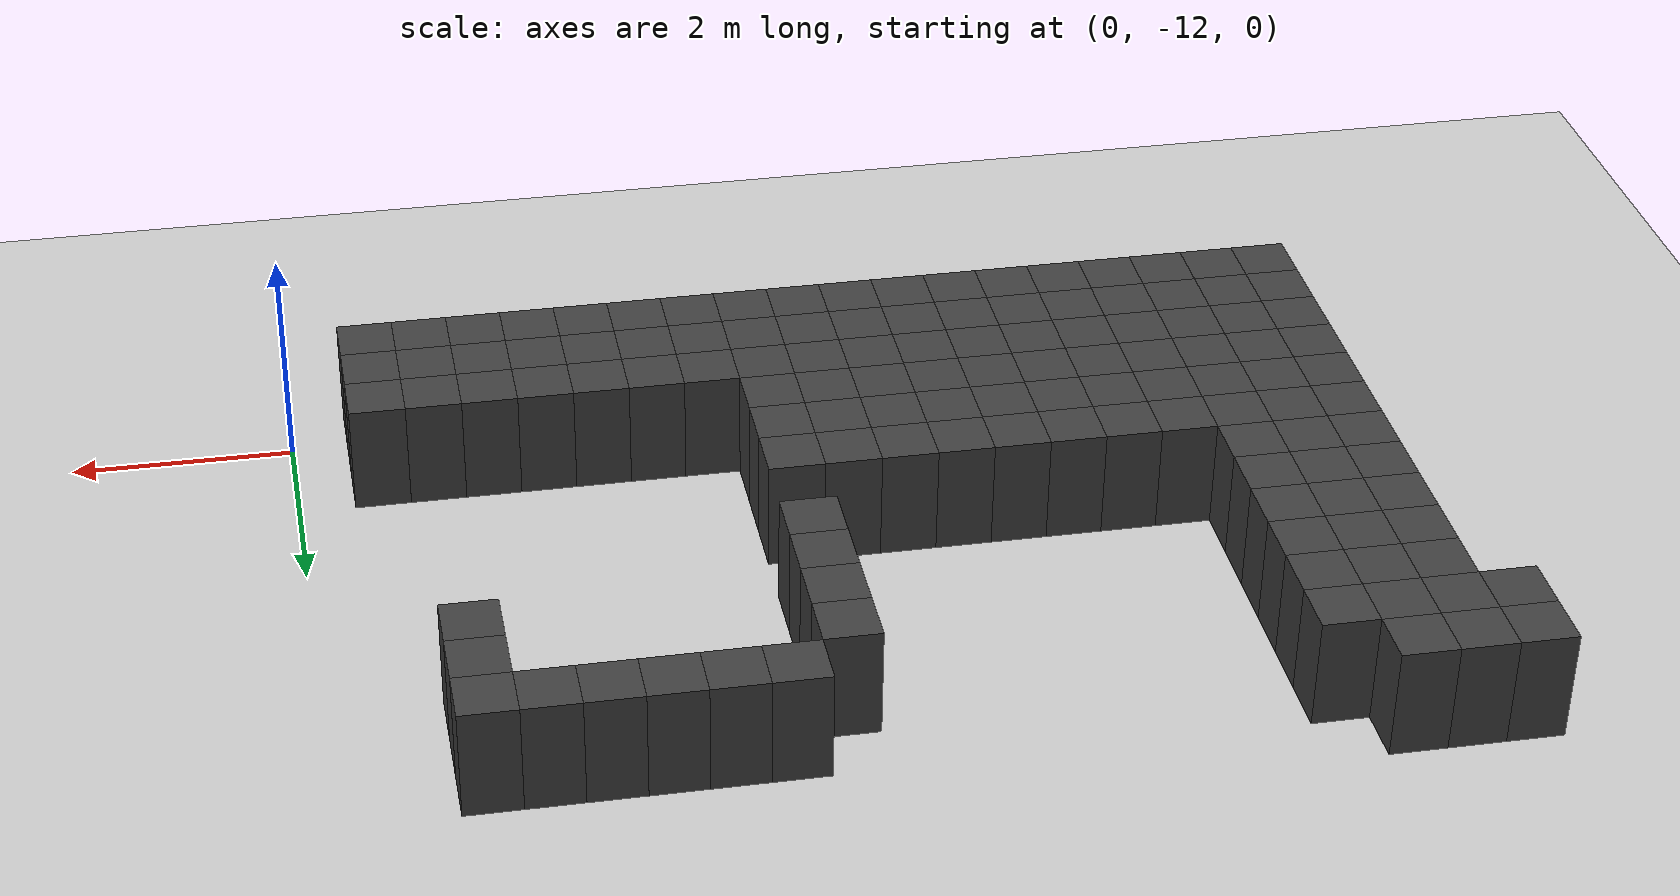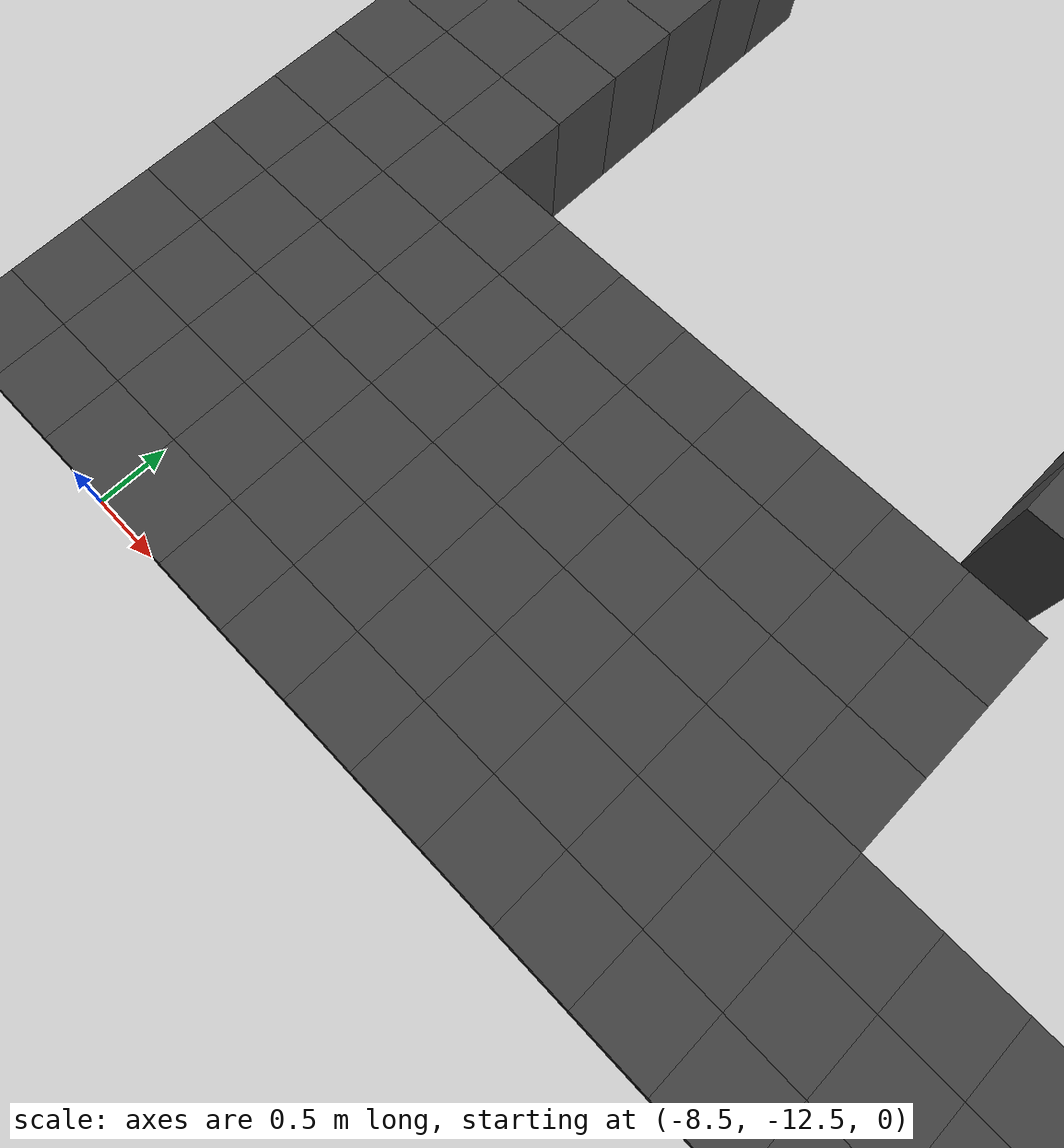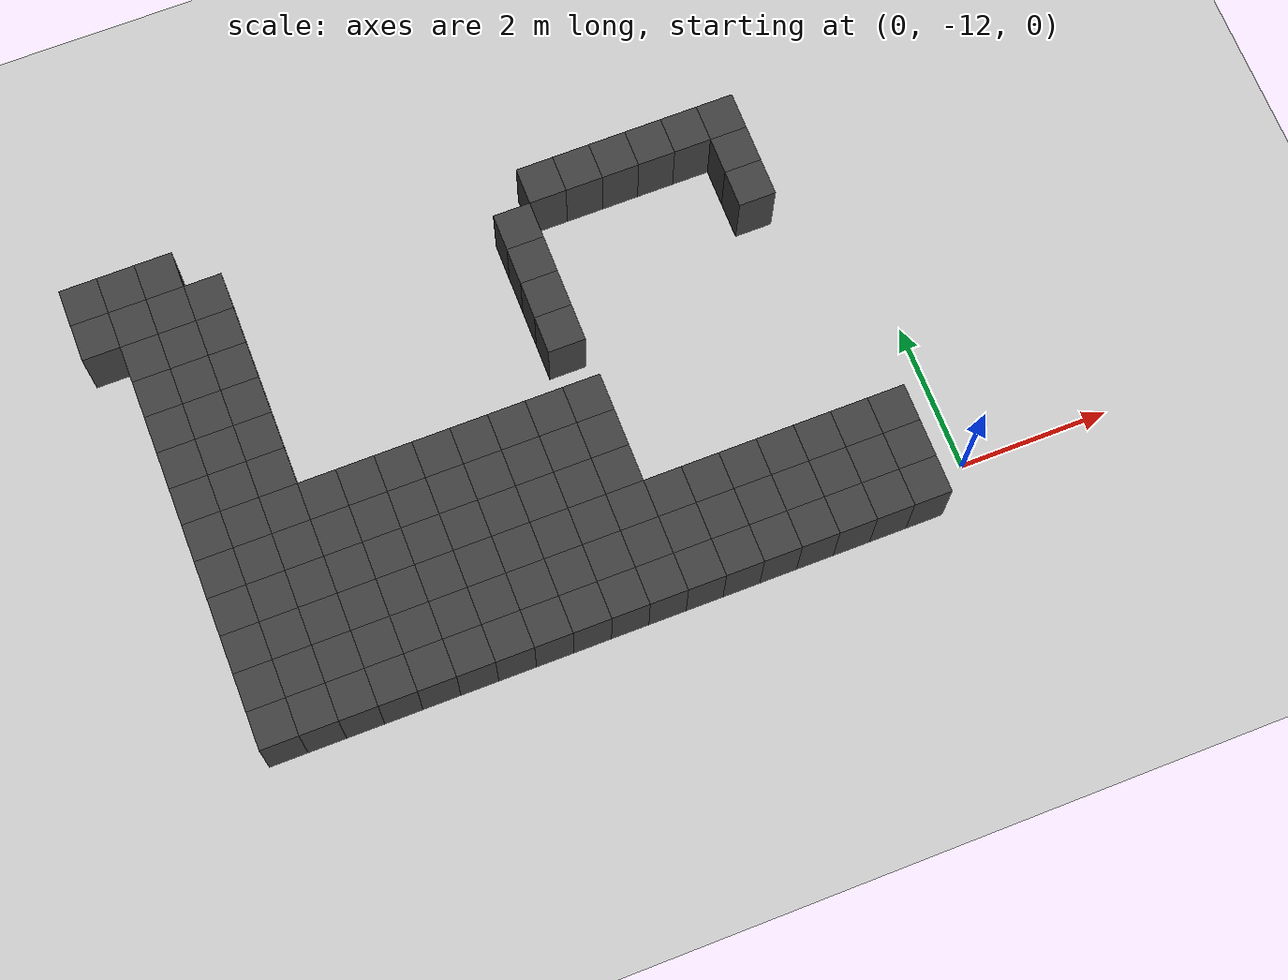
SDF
<sdf version="1.7">
 <world name="map_14888">
  <model name="ground_plane">
   <static>true</static>
   <link name="link">
    <collision name="collision">
     <geometry><plane><normal>0 0 1</normal><size>200 200</size></plane></geometry>
    </collision>
    <visual name="visual">
     <geometry><plane><normal>0 0 1</normal><size>200 200</size></plane></geometry>
     <material><ambient>0.8 0.8 0.8 1</ambient><diffuse>0.8 0.8 0.8 1</diffuse></material>
    </visual>
   </link>
  </model>
  <model name="maze_environment">
   <static>true</static>
   <link name="wall_1351">
    <pose>-9.750 -6.250 0.500 0 0 0</pose>
    <collision name="col"><geometry><box><size>0.5 0.5 1.0</size></box></geometry></collision>
    <visual name="vis">
     <geometry><box><size>0.5 0.5 1.0</size></box></geometry>
     <material><ambient>0.15 0.15 0.15 1</ambient><diffuse>0.25 0.25 0.25 1</diffuse></material>
    </visual>
   </link>
   <link name="wall_1352">
    <pose>-9.250 -6.250 0.500 0 0 0</pose>
    <collision name="col"><geometry><box><size>0.5 0.5 1.0</size></box></geometry></collision>
    <visual name="vis">
     <geometry><box><size>0.5 0.5 1.0</size></box></geometry>
     <material><ambient>0.15 0.15 0.15 1</ambient><diffuse>0.25 0.25 0.25 1</diffuse></material>
    </visual>
   </link>
   <link name="wall_1353">
    <pose>-8.750 -6.250 0.500 0 0 0</pose>
    <collision name="col"><geometry><box><size>0.5 0.5 1.0</size></box></geometry></collision>
    <visual name="vis">
     <geometry><box><size>0.5 0.5 1.0</size></box></geometry>
     <material><ambient>0.15 0.15 0.15 1</ambient><diffuse>0.25 0.25 0.25 1</diffuse></material>
    </visual>
   </link>
   <link name="wall_1377">
    <pose>-9.750 -6.750 0.500 0 0 0</pose>
    <collision name="col"><geometry><box><size>0.5 0.5 1.0</size></box></geometry></collision>
    <visual name="vis">
     <geometry><box><size>0.5 0.5 1.0</size></box></geometry>
     <material><ambient>0.15 0.15 0.15 1</ambient><diffuse>0.25 0.25 0.25 1</diffuse></material>
    </visual>
   </link>
   <link name="wall_1378">
    <pose>-9.250 -6.750 0.500 0 0 0</pose>
    <collision name="col"><geometry><box><size>0.5 0.5 1.0</size></box></geometry></collision>
    <visual name="vis">
     <geometry><box><size>0.5 0.5 1.0</size></box></geometry>
     <material><ambient>0.15 0.15 0.15 1</ambient><diffuse>0.25 0.25 0.25 1</diffuse></material>
    </visual>
   </link>
   <link name="wall_1379">
    <pose>-8.750 -6.750 0.500 0 0 0</pose>
    <collision name="col"><geometry><box><size>0.5 0.5 1.0</size></box></geometry></collision>
    <visual name="vis">
     <geometry><box><size>0.5 0.5 1.0</size></box></geometry>
     <material><ambient>0.15 0.15 0.15 1</ambient><diffuse>0.25 0.25 0.25 1</diffuse></material>
    </visual>
   </link>
   <link name="wall_1380">
    <pose>-8.250 -6.750 0.500 0 0 0</pose>
    <collision name="col"><geometry><box><size>0.5 0.5 1.0</size></box></geometry></collision>
    <visual name="vis">
     <geometry><box><size>0.5 0.5 1.0</size></box></geometry>
     <material><ambient>0.15 0.15 0.15 1</ambient><diffuse>0.25 0.25 0.25 1</diffuse></material>
    </visual>
   </link>
   <link name="wall_1381">
    <pose>-3.750 -6.750 0.500 0 0 0</pose>
    <collision name="col"><geometry><box><size>0.5 0.5 1.0</size></box></geometry></collision>
    <visual name="vis">
     <geometry><box><size>0.5 0.5 1.0</size></box></geometry>
     <material><ambient>0.15 0.15 0.15 1</ambient><diffuse>0.25 0.25 0.25 1</diffuse></material>
    </visual>
   </link>
   <link name="wall_1382">
    <pose>-3.250 -6.750 0.500 0 0 0</pose>
    <collision name="col"><geometry><box><size>0.5 0.5 1.0</size></box></geometry></collision>
    <visual name="vis">
     <geometry><box><size>0.5 0.5 1.0</size></box></geometry>
     <material><ambient>0.15 0.15 0.15 1</ambient><diffuse>0.25 0.25 0.25 1</diffuse></material>
    </visual>
   </link>
   <link name="wall_1383">
    <pose>-2.750 -6.750 0.500 0 0 0</pose>
    <collision name="col"><geometry><box><size>0.5 0.5 1.0</size></box></geometry></collision>
    <visual name="vis">
     <geometry><box><size>0.5 0.5 1.0</size></box></geometry>
     <material><ambient>0.15 0.15 0.15 1</ambient><diffuse>0.25 0.25 0.25 1</diffuse></material>
    </visual>
   </link>
   <link name="wall_1384">
    <pose>-2.250 -6.750 0.500 0 0 0</pose>
    <collision name="col"><geometry><box><size>0.5 0.5 1.0</size></box></geometry></collision>
    <visual name="vis">
     <geometry><box><size>0.5 0.5 1.0</size></box></geometry>
     <material><ambient>0.15 0.15 0.15 1</ambient><diffuse>0.25 0.25 0.25 1</diffuse></material>
    </visual>
   </link>
   <link name="wall_1385">
    <pose>-1.750 -6.750 0.500 0 0 0</pose>
    <collision name="col"><geometry><box><size>0.5 0.5 1.0</size></box></geometry></collision>
    <visual name="vis">
     <geometry><box><size>0.5 0.5 1.0</size></box></geometry>
     <material><ambient>0.15 0.15 0.15 1</ambient><diffuse>0.25 0.25 0.25 1</diffuse></material>
    </visual>
   </link>
   <link name="wall_1386">
    <pose>-1.250 -6.750 0.500 0 0 0</pose>
    <collision name="col"><geometry><box><size>0.5 0.5 1.0</size></box></geometry></collision>
    <visual name="vis">
     <geometry><box><size>0.5 0.5 1.0</size></box></geometry>
     <material><ambient>0.15 0.15 0.15 1</ambient><diffuse>0.25 0.25 0.25 1</diffuse></material>
    </visual>
   </link>
   <link name="wall_1412">
    <pose>-9.250 -7.250 0.500 0 0 0</pose>
    <collision name="col"><geometry><box><size>0.5 0.5 1.0</size></box></geometry></collision>
    <visual name="vis">
     <geometry><box><size>0.5 0.5 1.0</size></box></geometry>
     <material><ambient>0.15 0.15 0.15 1</ambient><diffuse>0.25 0.25 0.25 1</diffuse></material>
    </visual>
   </link>
   <link name="wall_1413">
    <pose>-8.750 -7.250 0.500 0 0 0</pose>
    <collision name="col"><geometry><box><size>0.5 0.5 1.0</size></box></geometry></collision>
    <visual name="vis">
     <geometry><box><size>0.5 0.5 1.0</size></box></geometry>
     <material><ambient>0.15 0.15 0.15 1</ambient><diffuse>0.25 0.25 0.25 1</diffuse></material>
    </visual>
   </link>
   <link name="wall_1414">
    <pose>-8.250 -7.250 0.500 0 0 0</pose>
    <collision name="col"><geometry><box><size>0.5 0.5 1.0</size></box></geometry></collision>
    <visual name="vis">
     <geometry><box><size>0.5 0.5 1.0</size></box></geometry>
     <material><ambient>0.15 0.15 0.15 1</ambient><diffuse>0.25 0.25 0.25 1</diffuse></material>
    </visual>
   </link>
   <link name="wall_1415">
    <pose>-4.250 -7.250 0.500 0 0 0</pose>
    <collision name="col"><geometry><box><size>0.5 0.5 1.0</size></box></geometry></collision>
    <visual name="vis">
     <geometry><box><size>0.5 0.5 1.0</size></box></geometry>
     <material><ambient>0.15 0.15 0.15 1</ambient><diffuse>0.25 0.25 0.25 1</diffuse></material>
    </visual>
   </link>
   <link name="wall_1416">
    <pose>-1.250 -7.250 0.500 0 0 0</pose>
    <collision name="col"><geometry><box><size>0.5 0.5 1.0</size></box></geometry></collision>
    <visual name="vis">
     <geometry><box><size>0.5 0.5 1.0</size></box></geometry>
     <material><ambient>0.15 0.15 0.15 1</ambient><diffuse>0.25 0.25 0.25 1</diffuse></material>
    </visual>
   </link>
   <link name="wall_1442">
    <pose>-9.250 -7.750 0.500 0 0 0</pose>
    <collision name="col"><geometry><box><size>0.5 0.5 1.0</size></box></geometry></collision>
    <visual name="vis">
     <geometry><box><size>0.5 0.5 1.0</size></box></geometry>
     <material><ambient>0.15 0.15 0.15 1</ambient><diffuse>0.25 0.25 0.25 1</diffuse></material>
    </visual>
   </link>
   <link name="wall_1443">
    <pose>-8.750 -7.750 0.500 0 0 0</pose>
    <collision name="col"><geometry><box><size>0.5 0.5 1.0</size></box></geometry></collision>
    <visual name="vis">
     <geometry><box><size>0.5 0.5 1.0</size></box></geometry>
     <material><ambient>0.15 0.15 0.15 1</ambient><diffuse>0.25 0.25 0.25 1</diffuse></material>
    </visual>
   </link>
   <link name="wall_1444">
    <pose>-8.250 -7.750 0.500 0 0 0</pose>
    <collision name="col"><geometry><box><size>0.5 0.5 1.0</size></box></geometry></collision>
    <visual name="vis">
     <geometry><box><size>0.5 0.5 1.0</size></box></geometry>
     <material><ambient>0.15 0.15 0.15 1</ambient><diffuse>0.25 0.25 0.25 1</diffuse></material>
    </visual>
   </link>
   <link name="wall_1445">
    <pose>-4.250 -7.750 0.500 0 0 0</pose>
    <collision name="col"><geometry><box><size>0.5 0.5 1.0</size></box></geometry></collision>
    <visual name="vis">
     <geometry><box><size>0.5 0.5 1.0</size></box></geometry>
     <material><ambient>0.15 0.15 0.15 1</ambient><diffuse>0.25 0.25 0.25 1</diffuse></material>
    </visual>
   </link>
   <link name="wall_1446">
    <pose>-1.250 -7.750 0.500 0 0 0</pose>
    <collision name="col"><geometry><box><size>0.5 0.5 1.0</size></box></geometry></collision>
    <visual name="vis">
     <geometry><box><size>0.5 0.5 1.0</size></box></geometry>
     <material><ambient>0.15 0.15 0.15 1</ambient><diffuse>0.25 0.25 0.25 1</diffuse></material>
    </visual>
   </link>
   <link name="wall_1478">
    <pose>-9.250 -8.250 0.500 0 0 0</pose>
    <collision name="col"><geometry><box><size>0.5 0.5 1.0</size></box></geometry></collision>
    <visual name="vis">
     <geometry><box><size>0.5 0.5 1.0</size></box></geometry>
     <material><ambient>0.15 0.15 0.15 1</ambient><diffuse>0.25 0.25 0.25 1</diffuse></material>
    </visual>
   </link>
   <link name="wall_1479">
    <pose>-8.750 -8.250 0.500 0 0 0</pose>
    <collision name="col"><geometry><box><size>0.5 0.5 1.0</size></box></geometry></collision>
    <visual name="vis">
     <geometry><box><size>0.5 0.5 1.0</size></box></geometry>
     <material><ambient>0.15 0.15 0.15 1</ambient><diffuse>0.25 0.25 0.25 1</diffuse></material>
    </visual>
   </link>
   <link name="wall_1480">
    <pose>-8.250 -8.250 0.500 0 0 0</pose>
    <collision name="col"><geometry><box><size>0.5 0.5 1.0</size></box></geometry></collision>
    <visual name="vis">
     <geometry><box><size>0.5 0.5 1.0</size></box></geometry>
     <material><ambient>0.15 0.15 0.15 1</ambient><diffuse>0.25 0.25 0.25 1</diffuse></material>
    </visual>
   </link>
   <link name="wall_1481">
    <pose>-4.250 -8.250 0.500 0 0 0</pose>
    <collision name="col"><geometry><box><size>0.5 0.5 1.0</size></box></geometry></collision>
    <visual name="vis">
     <geometry><box><size>0.5 0.5 1.0</size></box></geometry>
     <material><ambient>0.15 0.15 0.15 1</ambient><diffuse>0.25 0.25 0.25 1</diffuse></material>
    </visual>
   </link>
   <link name="wall_1511">
    <pose>-9.250 -8.750 0.500 0 0 0</pose>
    <collision name="col"><geometry><box><size>0.5 0.5 1.0</size></box></geometry></collision>
    <visual name="vis">
     <geometry><box><size>0.5 0.5 1.0</size></box></geometry>
     <material><ambient>0.15 0.15 0.15 1</ambient><diffuse>0.25 0.25 0.25 1</diffuse></material>
    </visual>
   </link>
   <link name="wall_1512">
    <pose>-8.750 -8.750 0.500 0 0 0</pose>
    <collision name="col"><geometry><box><size>0.5 0.5 1.0</size></box></geometry></collision>
    <visual name="vis">
     <geometry><box><size>0.5 0.5 1.0</size></box></geometry>
     <material><ambient>0.15 0.15 0.15 1</ambient><diffuse>0.25 0.25 0.25 1</diffuse></material>
    </visual>
   </link>
   <link name="wall_1513">
    <pose>-8.250 -8.750 0.500 0 0 0</pose>
    <collision name="col"><geometry><box><size>0.5 0.5 1.0</size></box></geometry></collision>
    <visual name="vis">
     <geometry><box><size>0.5 0.5 1.0</size></box></geometry>
     <material><ambient>0.15 0.15 0.15 1</ambient><diffuse>0.25 0.25 0.25 1</diffuse></material>
    </visual>
   </link>
   <link name="wall_1514">
    <pose>-4.250 -8.750 0.500 0 0 0</pose>
    <collision name="col"><geometry><box><size>0.5 0.5 1.0</size></box></geometry></collision>
    <visual name="vis">
     <geometry><box><size>0.5 0.5 1.0</size></box></geometry>
     <material><ambient>0.15 0.15 0.15 1</ambient><diffuse>0.25 0.25 0.25 1</diffuse></material>
    </visual>
   </link>
   <link name="wall_1544">
    <pose>-9.250 -9.250 0.500 0 0 0</pose>
    <collision name="col"><geometry><box><size>0.5 0.5 1.0</size></box></geometry></collision>
    <visual name="vis">
     <geometry><box><size>0.5 0.5 1.0</size></box></geometry>
     <material><ambient>0.15 0.15 0.15 1</ambient><diffuse>0.25 0.25 0.25 1</diffuse></material>
    </visual>
   </link>
   <link name="wall_1545">
    <pose>-8.750 -9.250 0.500 0 0 0</pose>
    <collision name="col"><geometry><box><size>0.5 0.5 1.0</size></box></geometry></collision>
    <visual name="vis">
     <geometry><box><size>0.5 0.5 1.0</size></box></geometry>
     <material><ambient>0.15 0.15 0.15 1</ambient><diffuse>0.25 0.25 0.25 1</diffuse></material>
    </visual>
   </link>
   <link name="wall_1546">
    <pose>-8.250 -9.250 0.500 0 0 0</pose>
    <collision name="col"><geometry><box><size>0.5 0.5 1.0</size></box></geometry></collision>
    <visual name="vis">
     <geometry><box><size>0.5 0.5 1.0</size></box></geometry>
     <material><ambient>0.15 0.15 0.15 1</ambient><diffuse>0.25 0.25 0.25 1</diffuse></material>
    </visual>
   </link>
   <link name="wall_1576">
    <pose>-9.250 -9.750 0.500 0 0 0</pose>
    <collision name="col"><geometry><box><size>0.5 0.5 1.0</size></box></geometry></collision>
    <visual name="vis">
     <geometry><box><size>0.5 0.5 1.0</size></box></geometry>
     <material><ambient>0.15 0.15 0.15 1</ambient><diffuse>0.25 0.25 0.25 1</diffuse></material>
    </visual>
   </link>
   <link name="wall_1577">
    <pose>-8.750 -9.750 0.500 0 0 0</pose>
    <collision name="col"><geometry><box><size>0.5 0.5 1.0</size></box></geometry></collision>
    <visual name="vis">
     <geometry><box><size>0.5 0.5 1.0</size></box></geometry>
     <material><ambient>0.15 0.15 0.15 1</ambient><diffuse>0.25 0.25 0.25 1</diffuse></material>
    </visual>
   </link>
   <link name="wall_1578">
    <pose>-8.250 -9.750 0.500 0 0 0</pose>
    <collision name="col"><geometry><box><size>0.5 0.5 1.0</size></box></geometry></collision>
    <visual name="vis">
     <geometry><box><size>0.5 0.5 1.0</size></box></geometry>
     <material><ambient>0.15 0.15 0.15 1</ambient><diffuse>0.25 0.25 0.25 1</diffuse></material>
    </visual>
   </link>
   <link name="wall_1579">
    <pose>-7.750 -9.750 0.500 0 0 0</pose>
    <collision name="col"><geometry><box><size>0.5 0.5 1.0</size></box></geometry></collision>
    <visual name="vis">
     <geometry><box><size>0.5 0.5 1.0</size></box></geometry>
     <material><ambient>0.15 0.15 0.15 1</ambient><diffuse>0.25 0.25 0.25 1</diffuse></material>
    </visual>
   </link>
   <link name="wall_1580">
    <pose>-7.250 -9.750 0.500 0 0 0</pose>
    <collision name="col"><geometry><box><size>0.5 0.5 1.0</size></box></geometry></collision>
    <visual name="vis">
     <geometry><box><size>0.5 0.5 1.0</size></box></geometry>
     <material><ambient>0.15 0.15 0.15 1</ambient><diffuse>0.25 0.25 0.25 1</diffuse></material>
    </visual>
   </link>
   <link name="wall_1581">
    <pose>-6.750 -9.750 0.500 0 0 0</pose>
    <collision name="col"><geometry><box><size>0.5 0.5 1.0</size></box></geometry></collision>
    <visual name="vis">
     <geometry><box><size>0.5 0.5 1.0</size></box></geometry>
     <material><ambient>0.15 0.15 0.15 1</ambient><diffuse>0.25 0.25 0.25 1</diffuse></material>
    </visual>
   </link>
   <link name="wall_1582">
    <pose>-6.250 -9.750 0.500 0 0 0</pose>
    <collision name="col"><geometry><box><size>0.5 0.5 1.0</size></box></geometry></collision>
    <visual name="vis">
     <geometry><box><size>0.5 0.5 1.0</size></box></geometry>
     <material><ambient>0.15 0.15 0.15 1</ambient><diffuse>0.25 0.25 0.25 1</diffuse></material>
    </visual>
   </link>
   <link name="wall_1583">
    <pose>-5.750 -9.750 0.500 0 0 0</pose>
    <collision name="col"><geometry><box><size>0.5 0.5 1.0</size></box></geometry></collision>
    <visual name="vis">
     <geometry><box><size>0.5 0.5 1.0</size></box></geometry>
     <material><ambient>0.15 0.15 0.15 1</ambient><diffuse>0.25 0.25 0.25 1</diffuse></material>
    </visual>
   </link>
   <link name="wall_1584">
    <pose>-5.250 -9.750 0.500 0 0 0</pose>
    <collision name="col"><geometry><box><size>0.5 0.5 1.0</size></box></geometry></collision>
    <visual name="vis">
     <geometry><box><size>0.5 0.5 1.0</size></box></geometry>
     <material><ambient>0.15 0.15 0.15 1</ambient><diffuse>0.25 0.25 0.25 1</diffuse></material>
    </visual>
   </link>
   <link name="wall_1585">
    <pose>-4.750 -9.750 0.500 0 0 0</pose>
    <collision name="col"><geometry><box><size>0.5 0.5 1.0</size></box></geometry></collision>
    <visual name="vis">
     <geometry><box><size>0.5 0.5 1.0</size></box></geometry>
     <material><ambient>0.15 0.15 0.15 1</ambient><diffuse>0.25 0.25 0.25 1</diffuse></material>
    </visual>
   </link>
   <link name="wall_1586">
    <pose>-4.250 -9.750 0.500 0 0 0</pose>
    <collision name="col"><geometry><box><size>0.5 0.5 1.0</size></box></geometry></collision>
    <visual name="vis">
     <geometry><box><size>0.5 0.5 1.0</size></box></geometry>
     <material><ambient>0.15 0.15 0.15 1</ambient><diffuse>0.25 0.25 0.25 1</diffuse></material>
    </visual>
   </link>
   <link name="wall_1616">
    <pose>-9.250 -10.250 0.500 0 0 0</pose>
    <collision name="col"><geometry><box><size>0.5 0.5 1.0</size></box></geometry></collision>
    <visual name="vis">
     <geometry><box><size>0.5 0.5 1.0</size></box></geometry>
     <material><ambient>0.15 0.15 0.15 1</ambient><diffuse>0.25 0.25 0.25 1</diffuse></material>
    </visual>
   </link>
   <link name="wall_1617">
    <pose>-8.750 -10.250 0.500 0 0 0</pose>
    <collision name="col"><geometry><box><size>0.5 0.5 1.0</size></box></geometry></collision>
    <visual name="vis">
     <geometry><box><size>0.5 0.5 1.0</size></box></geometry>
     <material><ambient>0.15 0.15 0.15 1</ambient><diffuse>0.25 0.25 0.25 1</diffuse></material>
    </visual>
   </link>
   <link name="wall_1618">
    <pose>-8.250 -10.250 0.500 0 0 0</pose>
    <collision name="col"><geometry><box><size>0.5 0.5 1.0</size></box></geometry></collision>
    <visual name="vis">
     <geometry><box><size>0.5 0.5 1.0</size></box></geometry>
     <material><ambient>0.15 0.15 0.15 1</ambient><diffuse>0.25 0.25 0.25 1</diffuse></material>
    </visual>
   </link>
   <link name="wall_1619">
    <pose>-7.750 -10.250 0.500 0 0 0</pose>
    <collision name="col"><geometry><box><size>0.5 0.5 1.0</size></box></geometry></collision>
    <visual name="vis">
     <geometry><box><size>0.5 0.5 1.0</size></box></geometry>
     <material><ambient>0.15 0.15 0.15 1</ambient><diffuse>0.25 0.25 0.25 1</diffuse></material>
    </visual>
   </link>
   <link name="wall_1620">
    <pose>-7.250 -10.250 0.500 0 0 0</pose>
    <collision name="col"><geometry><box><size>0.5 0.5 1.0</size></box></geometry></collision>
    <visual name="vis">
     <geometry><box><size>0.5 0.5 1.0</size></box></geometry>
     <material><ambient>0.15 0.15 0.15 1</ambient><diffuse>0.25 0.25 0.25 1</diffuse></material>
    </visual>
   </link>
   <link name="wall_1621">
    <pose>-6.750 -10.250 0.500 0 0 0</pose>
    <collision name="col"><geometry><box><size>0.5 0.5 1.0</size></box></geometry></collision>
    <visual name="vis">
     <geometry><box><size>0.5 0.5 1.0</size></box></geometry>
     <material><ambient>0.15 0.15 0.15 1</ambient><diffuse>0.25 0.25 0.25 1</diffuse></material>
    </visual>
   </link>
   <link name="wall_1622">
    <pose>-6.250 -10.250 0.500 0 0 0</pose>
    <collision name="col"><geometry><box><size>0.5 0.5 1.0</size></box></geometry></collision>
    <visual name="vis">
     <geometry><box><size>0.5 0.5 1.0</size></box></geometry>
     <material><ambient>0.15 0.15 0.15 1</ambient><diffuse>0.25 0.25 0.25 1</diffuse></material>
    </visual>
   </link>
   <link name="wall_1623">
    <pose>-5.750 -10.250 0.500 0 0 0</pose>
    <collision name="col"><geometry><box><size>0.5 0.5 1.0</size></box></geometry></collision>
    <visual name="vis">
     <geometry><box><size>0.5 0.5 1.0</size></box></geometry>
     <material><ambient>0.15 0.15 0.15 1</ambient><diffuse>0.25 0.25 0.25 1</diffuse></material>
    </visual>
   </link>
   <link name="wall_1624">
    <pose>-5.250 -10.250 0.500 0 0 0</pose>
    <collision name="col"><geometry><box><size>0.5 0.5 1.0</size></box></geometry></collision>
    <visual name="vis">
     <geometry><box><size>0.5 0.5 1.0</size></box></geometry>
     <material><ambient>0.15 0.15 0.15 1</ambient><diffuse>0.25 0.25 0.25 1</diffuse></material>
    </visual>
   </link>
   <link name="wall_1625">
    <pose>-4.750 -10.250 0.500 0 0 0</pose>
    <collision name="col"><geometry><box><size>0.5 0.5 1.0</size></box></geometry></collision>
    <visual name="vis">
     <geometry><box><size>0.5 0.5 1.0</size></box></geometry>
     <material><ambient>0.15 0.15 0.15 1</ambient><diffuse>0.25 0.25 0.25 1</diffuse></material>
    </visual>
   </link>
   <link name="wall_1626">
    <pose>-4.250 -10.250 0.500 0 0 0</pose>
    <collision name="col"><geometry><box><size>0.5 0.5 1.0</size></box></geometry></collision>
    <visual name="vis">
     <geometry><box><size>0.5 0.5 1.0</size></box></geometry>
     <material><ambient>0.15 0.15 0.15 1</ambient><diffuse>0.25 0.25 0.25 1</diffuse></material>
    </visual>
   </link>
   <link name="wall_1656">
    <pose>-9.250 -10.750 0.500 0 0 0</pose>
    <collision name="col"><geometry><box><size>0.5 0.5 1.0</size></box></geometry></collision>
    <visual name="vis">
     <geometry><box><size>0.5 0.5 1.0</size></box></geometry>
     <material><ambient>0.15 0.15 0.15 1</ambient><diffuse>0.25 0.25 0.25 1</diffuse></material>
    </visual>
   </link>
   <link name="wall_1657">
    <pose>-8.750 -10.750 0.500 0 0 0</pose>
    <collision name="col"><geometry><box><size>0.5 0.5 1.0</size></box></geometry></collision>
    <visual name="vis">
     <geometry><box><size>0.5 0.5 1.0</size></box></geometry>
     <material><ambient>0.15 0.15 0.15 1</ambient><diffuse>0.25 0.25 0.25 1</diffuse></material>
    </visual>
   </link>
   <link name="wall_1658">
    <pose>-8.250 -10.750 0.500 0 0 0</pose>
    <collision name="col"><geometry><box><size>0.5 0.5 1.0</size></box></geometry></collision>
    <visual name="vis">
     <geometry><box><size>0.5 0.5 1.0</size></box></geometry>
     <material><ambient>0.15 0.15 0.15 1</ambient><diffuse>0.25 0.25 0.25 1</diffuse></material>
    </visual>
   </link>
   <link name="wall_1659">
    <pose>-7.750 -10.750 0.500 0 0 0</pose>
    <collision name="col"><geometry><box><size>0.5 0.5 1.0</size></box></geometry></collision>
    <visual name="vis">
     <geometry><box><size>0.5 0.5 1.0</size></box></geometry>
     <material><ambient>0.15 0.15 0.15 1</ambient><diffuse>0.25 0.25 0.25 1</diffuse></material>
    </visual>
   </link>
   <link name="wall_1660">
    <pose>-7.250 -10.750 0.500 0 0 0</pose>
    <collision name="col"><geometry><box><size>0.5 0.5 1.0</size></box></geometry></collision>
    <visual name="vis">
     <geometry><box><size>0.5 0.5 1.0</size></box></geometry>
     <material><ambient>0.15 0.15 0.15 1</ambient><diffuse>0.25 0.25 0.25 1</diffuse></material>
    </visual>
   </link>
   <link name="wall_1661">
    <pose>-6.750 -10.750 0.500 0 0 0</pose>
    <collision name="col"><geometry><box><size>0.5 0.5 1.0</size></box></geometry></collision>
    <visual name="vis">
     <geometry><box><size>0.5 0.5 1.0</size></box></geometry>
     <material><ambient>0.15 0.15 0.15 1</ambient><diffuse>0.25 0.25 0.25 1</diffuse></material>
    </visual>
   </link>
   <link name="wall_1662">
    <pose>-6.250 -10.750 0.500 0 0 0</pose>
    <collision name="col"><geometry><box><size>0.5 0.5 1.0</size></box></geometry></collision>
    <visual name="vis">
     <geometry><box><size>0.5 0.5 1.0</size></box></geometry>
     <material><ambient>0.15 0.15 0.15 1</ambient><diffuse>0.25 0.25 0.25 1</diffuse></material>
    </visual>
   </link>
   <link name="wall_1663">
    <pose>-5.750 -10.750 0.500 0 0 0</pose>
    <collision name="col"><geometry><box><size>0.5 0.5 1.0</size></box></geometry></collision>
    <visual name="vis">
     <geometry><box><size>0.5 0.5 1.0</size></box></geometry>
     <material><ambient>0.15 0.15 0.15 1</ambient><diffuse>0.25 0.25 0.25 1</diffuse></material>
    </visual>
   </link>
   <link name="wall_1664">
    <pose>-5.250 -10.750 0.500 0 0 0</pose>
    <collision name="col"><geometry><box><size>0.5 0.5 1.0</size></box></geometry></collision>
    <visual name="vis">
     <geometry><box><size>0.5 0.5 1.0</size></box></geometry>
     <material><ambient>0.15 0.15 0.15 1</ambient><diffuse>0.25 0.25 0.25 1</diffuse></material>
    </visual>
   </link>
   <link name="wall_1665">
    <pose>-4.750 -10.750 0.500 0 0 0</pose>
    <collision name="col"><geometry><box><size>0.5 0.5 1.0</size></box></geometry></collision>
    <visual name="vis">
     <geometry><box><size>0.5 0.5 1.0</size></box></geometry>
     <material><ambient>0.15 0.15 0.15 1</ambient><diffuse>0.25 0.25 0.25 1</diffuse></material>
    </visual>
   </link>
   <link name="wall_1666">
    <pose>-4.250 -10.750 0.500 0 0 0</pose>
    <collision name="col"><geometry><box><size>0.5 0.5 1.0</size></box></geometry></collision>
    <visual name="vis">
     <geometry><box><size>0.5 0.5 1.0</size></box></geometry>
     <material><ambient>0.15 0.15 0.15 1</ambient><diffuse>0.25 0.25 0.25 1</diffuse></material>
    </visual>
   </link>
   <link name="wall_1693">
    <pose>-9.250 -11.250 0.500 0 0 0</pose>
    <collision name="col"><geometry><box><size>0.5 0.5 1.0</size></box></geometry></collision>
    <visual name="vis">
     <geometry><box><size>0.5 0.5 1.0</size></box></geometry>
     <material><ambient>0.15 0.15 0.15 1</ambient><diffuse>0.25 0.25 0.25 1</diffuse></material>
    </visual>
   </link>
   <link name="wall_1694">
    <pose>-8.750 -11.250 0.500 0 0 0</pose>
    <collision name="col"><geometry><box><size>0.5 0.5 1.0</size></box></geometry></collision>
    <visual name="vis">
     <geometry><box><size>0.5 0.5 1.0</size></box></geometry>
     <material><ambient>0.15 0.15 0.15 1</ambient><diffuse>0.25 0.25 0.25 1</diffuse></material>
    </visual>
   </link>
   <link name="wall_1695">
    <pose>-8.250 -11.250 0.500 0 0 0</pose>
    <collision name="col"><geometry><box><size>0.5 0.5 1.0</size></box></geometry></collision>
    <visual name="vis">
     <geometry><box><size>0.5 0.5 1.0</size></box></geometry>
     <material><ambient>0.15 0.15 0.15 1</ambient><diffuse>0.25 0.25 0.25 1</diffuse></material>
    </visual>
   </link>
   <link name="wall_1696">
    <pose>-7.750 -11.250 0.500 0 0 0</pose>
    <collision name="col"><geometry><box><size>0.5 0.5 1.0</size></box></geometry></collision>
    <visual name="vis">
     <geometry><box><size>0.5 0.5 1.0</size></box></geometry>
     <material><ambient>0.15 0.15 0.15 1</ambient><diffuse>0.25 0.25 0.25 1</diffuse></material>
    </visual>
   </link>
   <link name="wall_1697">
    <pose>-7.250 -11.250 0.500 0 0 0</pose>
    <collision name="col"><geometry><box><size>0.5 0.5 1.0</size></box></geometry></collision>
    <visual name="vis">
     <geometry><box><size>0.5 0.5 1.0</size></box></geometry>
     <material><ambient>0.15 0.15 0.15 1</ambient><diffuse>0.25 0.25 0.25 1</diffuse></material>
    </visual>
   </link>
   <link name="wall_1698">
    <pose>-6.750 -11.250 0.500 0 0 0</pose>
    <collision name="col"><geometry><box><size>0.5 0.5 1.0</size></box></geometry></collision>
    <visual name="vis">
     <geometry><box><size>0.5 0.5 1.0</size></box></geometry>
     <material><ambient>0.15 0.15 0.15 1</ambient><diffuse>0.25 0.25 0.25 1</diffuse></material>
    </visual>
   </link>
   <link name="wall_1699">
    <pose>-6.250 -11.250 0.500 0 0 0</pose>
    <collision name="col"><geometry><box><size>0.5 0.5 1.0</size></box></geometry></collision>
    <visual name="vis">
     <geometry><box><size>0.5 0.5 1.0</size></box></geometry>
     <material><ambient>0.15 0.15 0.15 1</ambient><diffuse>0.25 0.25 0.25 1</diffuse></material>
    </visual>
   </link>
   <link name="wall_1700">
    <pose>-5.750 -11.250 0.500 0 0 0</pose>
    <collision name="col"><geometry><box><size>0.5 0.5 1.0</size></box></geometry></collision>
    <visual name="vis">
     <geometry><box><size>0.5 0.5 1.0</size></box></geometry>
     <material><ambient>0.15 0.15 0.15 1</ambient><diffuse>0.25 0.25 0.25 1</diffuse></material>
    </visual>
   </link>
   <link name="wall_1701">
    <pose>-5.250 -11.250 0.500 0 0 0</pose>
    <collision name="col"><geometry><box><size>0.5 0.5 1.0</size></box></geometry></collision>
    <visual name="vis">
     <geometry><box><size>0.5 0.5 1.0</size></box></geometry>
     <material><ambient>0.15 0.15 0.15 1</ambient><diffuse>0.25 0.25 0.25 1</diffuse></material>
    </visual>
   </link>
   <link name="wall_1702">
    <pose>-4.750 -11.250 0.500 0 0 0</pose>
    <collision name="col"><geometry><box><size>0.5 0.5 1.0</size></box></geometry></collision>
    <visual name="vis">
     <geometry><box><size>0.5 0.5 1.0</size></box></geometry>
     <material><ambient>0.15 0.15 0.15 1</ambient><diffuse>0.25 0.25 0.25 1</diffuse></material>
    </visual>
   </link>
   <link name="wall_1703">
    <pose>-4.250 -11.250 0.500 0 0 0</pose>
    <collision name="col"><geometry><box><size>0.5 0.5 1.0</size></box></geometry></collision>
    <visual name="vis">
     <geometry><box><size>0.5 0.5 1.0</size></box></geometry>
     <material><ambient>0.15 0.15 0.15 1</ambient><diffuse>0.25 0.25 0.25 1</diffuse></material>
    </visual>
   </link>
   <link name="wall_1704">
    <pose>-3.750 -11.250 0.500 0 0 0</pose>
    <collision name="col"><geometry><box><size>0.5 0.5 1.0</size></box></geometry></collision>
    <visual name="vis">
     <geometry><box><size>0.5 0.5 1.0</size></box></geometry>
     <material><ambient>0.15 0.15 0.15 1</ambient><diffuse>0.25 0.25 0.25 1</diffuse></material>
    </visual>
   </link>
   <link name="wall_1705">
    <pose>-3.250 -11.250 0.500 0 0 0</pose>
    <collision name="col"><geometry><box><size>0.5 0.5 1.0</size></box></geometry></collision>
    <visual name="vis">
     <geometry><box><size>0.5 0.5 1.0</size></box></geometry>
     <material><ambient>0.15 0.15 0.15 1</ambient><diffuse>0.25 0.25 0.25 1</diffuse></material>
    </visual>
   </link>
   <link name="wall_1706">
    <pose>-2.750 -11.250 0.500 0 0 0</pose>
    <collision name="col"><geometry><box><size>0.5 0.5 1.0</size></box></geometry></collision>
    <visual name="vis">
     <geometry><box><size>0.5 0.5 1.0</size></box></geometry>
     <material><ambient>0.15 0.15 0.15 1</ambient><diffuse>0.25 0.25 0.25 1</diffuse></material>
    </visual>
   </link>
   <link name="wall_1707">
    <pose>-2.250 -11.250 0.500 0 0 0</pose>
    <collision name="col"><geometry><box><size>0.5 0.5 1.0</size></box></geometry></collision>
    <visual name="vis">
     <geometry><box><size>0.5 0.5 1.0</size></box></geometry>
     <material><ambient>0.15 0.15 0.15 1</ambient><diffuse>0.25 0.25 0.25 1</diffuse></material>
    </visual>
   </link>
   <link name="wall_1708">
    <pose>-1.750 -11.250 0.500 0 0 0</pose>
    <collision name="col"><geometry><box><size>0.5 0.5 1.0</size></box></geometry></collision>
    <visual name="vis">
     <geometry><box><size>0.5 0.5 1.0</size></box></geometry>
     <material><ambient>0.15 0.15 0.15 1</ambient><diffuse>0.25 0.25 0.25 1</diffuse></material>
    </visual>
   </link>
   <link name="wall_1709">
    <pose>-1.250 -11.250 0.500 0 0 0</pose>
    <collision name="col"><geometry><box><size>0.5 0.5 1.0</size></box></geometry></collision>
    <visual name="vis">
     <geometry><box><size>0.5 0.5 1.0</size></box></geometry>
     <material><ambient>0.15 0.15 0.15 1</ambient><diffuse>0.25 0.25 0.25 1</diffuse></material>
    </visual>
   </link>
   <link name="wall_1710">
    <pose>-0.750 -11.250 0.500 0 0 0</pose>
    <collision name="col"><geometry><box><size>0.5 0.5 1.0</size></box></geometry></collision>
    <visual name="vis">
     <geometry><box><size>0.5 0.5 1.0</size></box></geometry>
     <material><ambient>0.15 0.15 0.15 1</ambient><diffuse>0.25 0.25 0.25 1</diffuse></material>
    </visual>
   </link>
   <link name="wall_1733">
    <pose>-9.250 -11.750 0.500 0 0 0</pose>
    <collision name="col"><geometry><box><size>0.5 0.5 1.0</size></box></geometry></collision>
    <visual name="vis">
     <geometry><box><size>0.5 0.5 1.0</size></box></geometry>
     <material><ambient>0.15 0.15 0.15 1</ambient><diffuse>0.25 0.25 0.25 1</diffuse></material>
    </visual>
   </link>
   <link name="wall_1734">
    <pose>-8.750 -11.750 0.500 0 0 0</pose>
    <collision name="col"><geometry><box><size>0.5 0.5 1.0</size></box></geometry></collision>
    <visual name="vis">
     <geometry><box><size>0.5 0.5 1.0</size></box></geometry>
     <material><ambient>0.15 0.15 0.15 1</ambient><diffuse>0.25 0.25 0.25 1</diffuse></material>
    </visual>
   </link>
   <link name="wall_1735">
    <pose>-8.250 -11.750 0.500 0 0 0</pose>
    <collision name="col"><geometry><box><size>0.5 0.5 1.0</size></box></geometry></collision>
    <visual name="vis">
     <geometry><box><size>0.5 0.5 1.0</size></box></geometry>
     <material><ambient>0.15 0.15 0.15 1</ambient><diffuse>0.25 0.25 0.25 1</diffuse></material>
    </visual>
   </link>
   <link name="wall_1736">
    <pose>-7.750 -11.750 0.500 0 0 0</pose>
    <collision name="col"><geometry><box><size>0.5 0.5 1.0</size></box></geometry></collision>
    <visual name="vis">
     <geometry><box><size>0.5 0.5 1.0</size></box></geometry>
     <material><ambient>0.15 0.15 0.15 1</ambient><diffuse>0.25 0.25 0.25 1</diffuse></material>
    </visual>
   </link>
   <link name="wall_1737">
    <pose>-7.250 -11.750 0.500 0 0 0</pose>
    <collision name="col"><geometry><box><size>0.5 0.5 1.0</size></box></geometry></collision>
    <visual name="vis">
     <geometry><box><size>0.5 0.5 1.0</size></box></geometry>
     <material><ambient>0.15 0.15 0.15 1</ambient><diffuse>0.25 0.25 0.25 1</diffuse></material>
    </visual>
   </link>
   <link name="wall_1738">
    <pose>-6.750 -11.750 0.500 0 0 0</pose>
    <collision name="col"><geometry><box><size>0.5 0.5 1.0</size></box></geometry></collision>
    <visual name="vis">
     <geometry><box><size>0.5 0.5 1.0</size></box></geometry>
     <material><ambient>0.15 0.15 0.15 1</ambient><diffuse>0.25 0.25 0.25 1</diffuse></material>
    </visual>
   </link>
   <link name="wall_1739">
    <pose>-6.250 -11.750 0.500 0 0 0</pose>
    <collision name="col"><geometry><box><size>0.5 0.5 1.0</size></box></geometry></collision>
    <visual name="vis">
     <geometry><box><size>0.5 0.5 1.0</size></box></geometry>
     <material><ambient>0.15 0.15 0.15 1</ambient><diffuse>0.25 0.25 0.25 1</diffuse></material>
    </visual>
   </link>
   <link name="wall_1740">
    <pose>-5.750 -11.750 0.500 0 0 0</pose>
    <collision name="col"><geometry><box><size>0.5 0.5 1.0</size></box></geometry></collision>
    <visual name="vis">
     <geometry><box><size>0.5 0.5 1.0</size></box></geometry>
     <material><ambient>0.15 0.15 0.15 1</ambient><diffuse>0.25 0.25 0.25 1</diffuse></material>
    </visual>
   </link>
   <link name="wall_1741">
    <pose>-5.250 -11.750 0.500 0 0 0</pose>
    <collision name="col"><geometry><box><size>0.5 0.5 1.0</size></box></geometry></collision>
    <visual name="vis">
     <geometry><box><size>0.5 0.5 1.0</size></box></geometry>
     <material><ambient>0.15 0.15 0.15 1</ambient><diffuse>0.25 0.25 0.25 1</diffuse></material>
    </visual>
   </link>
   <link name="wall_1742">
    <pose>-4.750 -11.750 0.500 0 0 0</pose>
    <collision name="col"><geometry><box><size>0.5 0.5 1.0</size></box></geometry></collision>
    <visual name="vis">
     <geometry><box><size>0.5 0.5 1.0</size></box></geometry>
     <material><ambient>0.15 0.15 0.15 1</ambient><diffuse>0.25 0.25 0.25 1</diffuse></material>
    </visual>
   </link>
   <link name="wall_1743">
    <pose>-4.250 -11.750 0.500 0 0 0</pose>
    <collision name="col"><geometry><box><size>0.5 0.5 1.0</size></box></geometry></collision>
    <visual name="vis">
     <geometry><box><size>0.5 0.5 1.0</size></box></geometry>
     <material><ambient>0.15 0.15 0.15 1</ambient><diffuse>0.25 0.25 0.25 1</diffuse></material>
    </visual>
   </link>
   <link name="wall_1744">
    <pose>-3.750 -11.750 0.500 0 0 0</pose>
    <collision name="col"><geometry><box><size>0.5 0.5 1.0</size></box></geometry></collision>
    <visual name="vis">
     <geometry><box><size>0.5 0.5 1.0</size></box></geometry>
     <material><ambient>0.15 0.15 0.15 1</ambient><diffuse>0.25 0.25 0.25 1</diffuse></material>
    </visual>
   </link>
   <link name="wall_1745">
    <pose>-3.250 -11.750 0.500 0 0 0</pose>
    <collision name="col"><geometry><box><size>0.5 0.5 1.0</size></box></geometry></collision>
    <visual name="vis">
     <geometry><box><size>0.5 0.5 1.0</size></box></geometry>
     <material><ambient>0.15 0.15 0.15 1</ambient><diffuse>0.25 0.25 0.25 1</diffuse></material>
    </visual>
   </link>
   <link name="wall_1746">
    <pose>-2.750 -11.750 0.500 0 0 0</pose>
    <collision name="col"><geometry><box><size>0.5 0.5 1.0</size></box></geometry></collision>
    <visual name="vis">
     <geometry><box><size>0.5 0.5 1.0</size></box></geometry>
     <material><ambient>0.15 0.15 0.15 1</ambient><diffuse>0.25 0.25 0.25 1</diffuse></material>
    </visual>
   </link>
   <link name="wall_1747">
    <pose>-2.250 -11.750 0.500 0 0 0</pose>
    <collision name="col"><geometry><box><size>0.5 0.5 1.0</size></box></geometry></collision>
    <visual name="vis">
     <geometry><box><size>0.5 0.5 1.0</size></box></geometry>
     <material><ambient>0.15 0.15 0.15 1</ambient><diffuse>0.25 0.25 0.25 1</diffuse></material>
    </visual>
   </link>
   <link name="wall_1748">
    <pose>-1.750 -11.750 0.500 0 0 0</pose>
    <collision name="col"><geometry><box><size>0.5 0.5 1.0</size></box></geometry></collision>
    <visual name="vis">
     <geometry><box><size>0.5 0.5 1.0</size></box></geometry>
     <material><ambient>0.15 0.15 0.15 1</ambient><diffuse>0.25 0.25 0.25 1</diffuse></material>
    </visual>
   </link>
   <link name="wall_1749">
    <pose>-1.250 -11.750 0.500 0 0 0</pose>
    <collision name="col"><geometry><box><size>0.5 0.5 1.0</size></box></geometry></collision>
    <visual name="vis">
     <geometry><box><size>0.5 0.5 1.0</size></box></geometry>
     <material><ambient>0.15 0.15 0.15 1</ambient><diffuse>0.25 0.25 0.25 1</diffuse></material>
    </visual>
   </link>
   <link name="wall_1750">
    <pose>-0.750 -11.750 0.500 0 0 0</pose>
    <collision name="col"><geometry><box><size>0.5 0.5 1.0</size></box></geometry></collision>
    <visual name="vis">
     <geometry><box><size>0.5 0.5 1.0</size></box></geometry>
     <material><ambient>0.15 0.15 0.15 1</ambient><diffuse>0.25 0.25 0.25 1</diffuse></material>
    </visual>
   </link>
   <link name="wall_1780">
    <pose>-9.250 -12.250 0.500 0 0 0</pose>
    <collision name="col"><geometry><box><size>0.5 0.5 1.0</size></box></geometry></collision>
    <visual name="vis">
     <geometry><box><size>0.5 0.5 1.0</size></box></geometry>
     <material><ambient>0.15 0.15 0.15 1</ambient><diffuse>0.25 0.25 0.25 1</diffuse></material>
    </visual>
   </link>
   <link name="wall_1781">
    <pose>-8.750 -12.250 0.500 0 0 0</pose>
    <collision name="col"><geometry><box><size>0.5 0.5 1.0</size></box></geometry></collision>
    <visual name="vis">
     <geometry><box><size>0.5 0.5 1.0</size></box></geometry>
     <material><ambient>0.15 0.15 0.15 1</ambient><diffuse>0.25 0.25 0.25 1</diffuse></material>
    </visual>
   </link>
   <link name="wall_1782">
    <pose>-8.250 -12.250 0.500 0 0 0</pose>
    <collision name="col"><geometry><box><size>0.5 0.5 1.0</size></box></geometry></collision>
    <visual name="vis">
     <geometry><box><size>0.5 0.5 1.0</size></box></geometry>
     <material><ambient>0.15 0.15 0.15 1</ambient><diffuse>0.25 0.25 0.25 1</diffuse></material>
    </visual>
   </link>
   <link name="wall_1783">
    <pose>-7.750 -12.250 0.500 0 0 0</pose>
    <collision name="col"><geometry><box><size>0.5 0.5 1.0</size></box></geometry></collision>
    <visual name="vis">
     <geometry><box><size>0.5 0.5 1.0</size></box></geometry>
     <material><ambient>0.15 0.15 0.15 1</ambient><diffuse>0.25 0.25 0.25 1</diffuse></material>
    </visual>
   </link>
   <link name="wall_1784">
    <pose>-7.250 -12.250 0.500 0 0 0</pose>
    <collision name="col"><geometry><box><size>0.5 0.5 1.0</size></box></geometry></collision>
    <visual name="vis">
     <geometry><box><size>0.5 0.5 1.0</size></box></geometry>
     <material><ambient>0.15 0.15 0.15 1</ambient><diffuse>0.25 0.25 0.25 1</diffuse></material>
    </visual>
   </link>
   <link name="wall_1785">
    <pose>-6.750 -12.250 0.500 0 0 0</pose>
    <collision name="col"><geometry><box><size>0.5 0.5 1.0</size></box></geometry></collision>
    <visual name="vis">
     <geometry><box><size>0.5 0.5 1.0</size></box></geometry>
     <material><ambient>0.15 0.15 0.15 1</ambient><diffuse>0.25 0.25 0.25 1</diffuse></material>
    </visual>
   </link>
   <link name="wall_1786">
    <pose>-6.250 -12.250 0.500 0 0 0</pose>
    <collision name="col"><geometry><box><size>0.5 0.5 1.0</size></box></geometry></collision>
    <visual name="vis">
     <geometry><box><size>0.5 0.5 1.0</size></box></geometry>
     <material><ambient>0.15 0.15 0.15 1</ambient><diffuse>0.25 0.25 0.25 1</diffuse></material>
    </visual>
   </link>
   <link name="wall_1787">
    <pose>-5.750 -12.250 0.500 0 0 0</pose>
    <collision name="col"><geometry><box><size>0.5 0.5 1.0</size></box></geometry></collision>
    <visual name="vis">
     <geometry><box><size>0.5 0.5 1.0</size></box></geometry>
     <material><ambient>0.15 0.15 0.15 1</ambient><diffuse>0.25 0.25 0.25 1</diffuse></material>
    </visual>
   </link>
   <link name="wall_1788">
    <pose>-5.250 -12.250 0.500 0 0 0</pose>
    <collision name="col"><geometry><box><size>0.5 0.5 1.0</size></box></geometry></collision>
    <visual name="vis">
     <geometry><box><size>0.5 0.5 1.0</size></box></geometry>
     <material><ambient>0.15 0.15 0.15 1</ambient><diffuse>0.25 0.25 0.25 1</diffuse></material>
    </visual>
   </link>
   <link name="wall_1789">
    <pose>-4.750 -12.250 0.500 0 0 0</pose>
    <collision name="col"><geometry><box><size>0.5 0.5 1.0</size></box></geometry></collision>
    <visual name="vis">
     <geometry><box><size>0.5 0.5 1.0</size></box></geometry>
     <material><ambient>0.15 0.15 0.15 1</ambient><diffuse>0.25 0.25 0.25 1</diffuse></material>
    </visual>
   </link>
   <link name="wall_1790">
    <pose>-4.250 -12.250 0.500 0 0 0</pose>
    <collision name="col"><geometry><box><size>0.5 0.5 1.0</size></box></geometry></collision>
    <visual name="vis">
     <geometry><box><size>0.5 0.5 1.0</size></box></geometry>
     <material><ambient>0.15 0.15 0.15 1</ambient><diffuse>0.25 0.25 0.25 1</diffuse></material>
    </visual>
   </link>
   <link name="wall_1791">
    <pose>-3.750 -12.250 0.500 0 0 0</pose>
    <collision name="col"><geometry><box><size>0.5 0.5 1.0</size></box></geometry></collision>
    <visual name="vis">
     <geometry><box><size>0.5 0.5 1.0</size></box></geometry>
     <material><ambient>0.15 0.15 0.15 1</ambient><diffuse>0.25 0.25 0.25 1</diffuse></material>
    </visual>
   </link>
   <link name="wall_1792">
    <pose>-3.250 -12.250 0.500 0 0 0</pose>
    <collision name="col"><geometry><box><size>0.5 0.5 1.0</size></box></geometry></collision>
    <visual name="vis">
     <geometry><box><size>0.5 0.5 1.0</size></box></geometry>
     <material><ambient>0.15 0.15 0.15 1</ambient><diffuse>0.25 0.25 0.25 1</diffuse></material>
    </visual>
   </link>
   <link name="wall_1793">
    <pose>-2.750 -12.250 0.500 0 0 0</pose>
    <collision name="col"><geometry><box><size>0.5 0.5 1.0</size></box></geometry></collision>
    <visual name="vis">
     <geometry><box><size>0.5 0.5 1.0</size></box></geometry>
     <material><ambient>0.15 0.15 0.15 1</ambient><diffuse>0.25 0.25 0.25 1</diffuse></material>
    </visual>
   </link>
   <link name="wall_1794">
    <pose>-2.250 -12.250 0.500 0 0 0</pose>
    <collision name="col"><geometry><box><size>0.5 0.5 1.0</size></box></geometry></collision>
    <visual name="vis">
     <geometry><box><size>0.5 0.5 1.0</size></box></geometry>
     <material><ambient>0.15 0.15 0.15 1</ambient><diffuse>0.25 0.25 0.25 1</diffuse></material>
    </visual>
   </link>
   <link name="wall_1795">
    <pose>-1.750 -12.250 0.500 0 0 0</pose>
    <collision name="col"><geometry><box><size>0.5 0.5 1.0</size></box></geometry></collision>
    <visual name="vis">
     <geometry><box><size>0.5 0.5 1.0</size></box></geometry>
     <material><ambient>0.15 0.15 0.15 1</ambient><diffuse>0.25 0.25 0.25 1</diffuse></material>
    </visual>
   </link>
   <link name="wall_1796">
    <pose>-1.250 -12.250 0.500 0 0 0</pose>
    <collision name="col"><geometry><box><size>0.5 0.5 1.0</size></box></geometry></collision>
    <visual name="vis">
     <geometry><box><size>0.5 0.5 1.0</size></box></geometry>
     <material><ambient>0.15 0.15 0.15 1</ambient><diffuse>0.25 0.25 0.25 1</diffuse></material>
    </visual>
   </link>
   <link name="wall_1797">
    <pose>-0.750 -12.250 0.500 0 0 0</pose>
    <collision name="col"><geometry><box><size>0.5 0.5 1.0</size></box></geometry></collision>
    <visual name="vis">
     <geometry><box><size>0.5 0.5 1.0</size></box></geometry>
     <material><ambient>0.15 0.15 0.15 1</ambient><diffuse>0.25 0.25 0.25 1</diffuse></material>
    </visual>
   </link>
  </model>
 </world>
</sdf>
